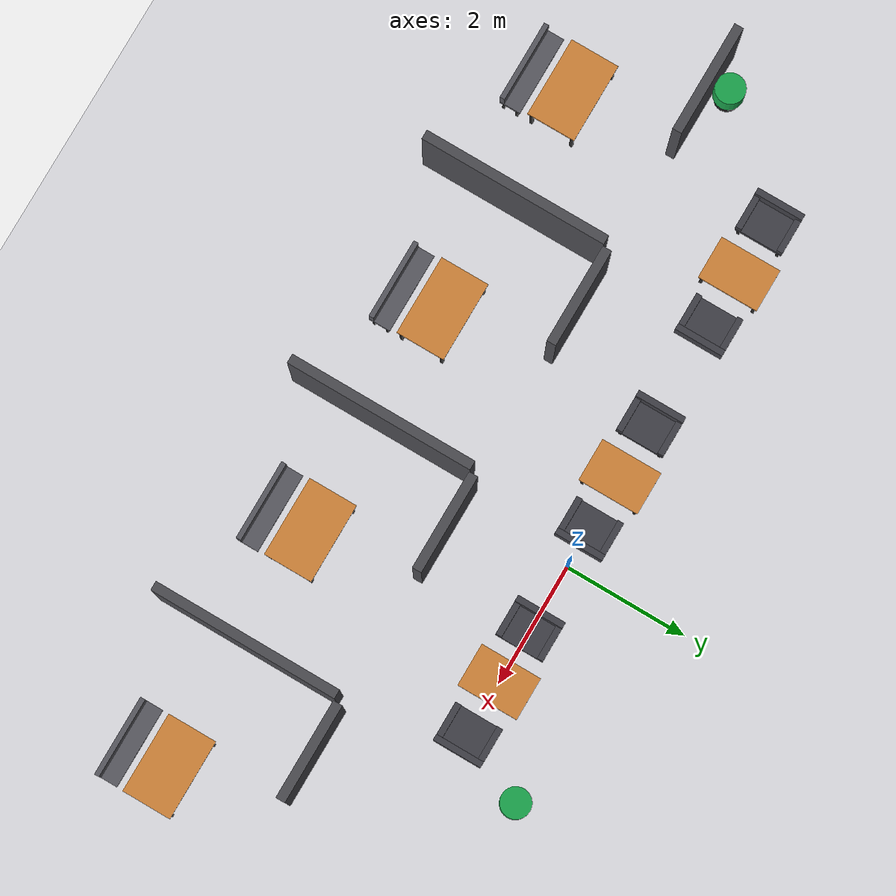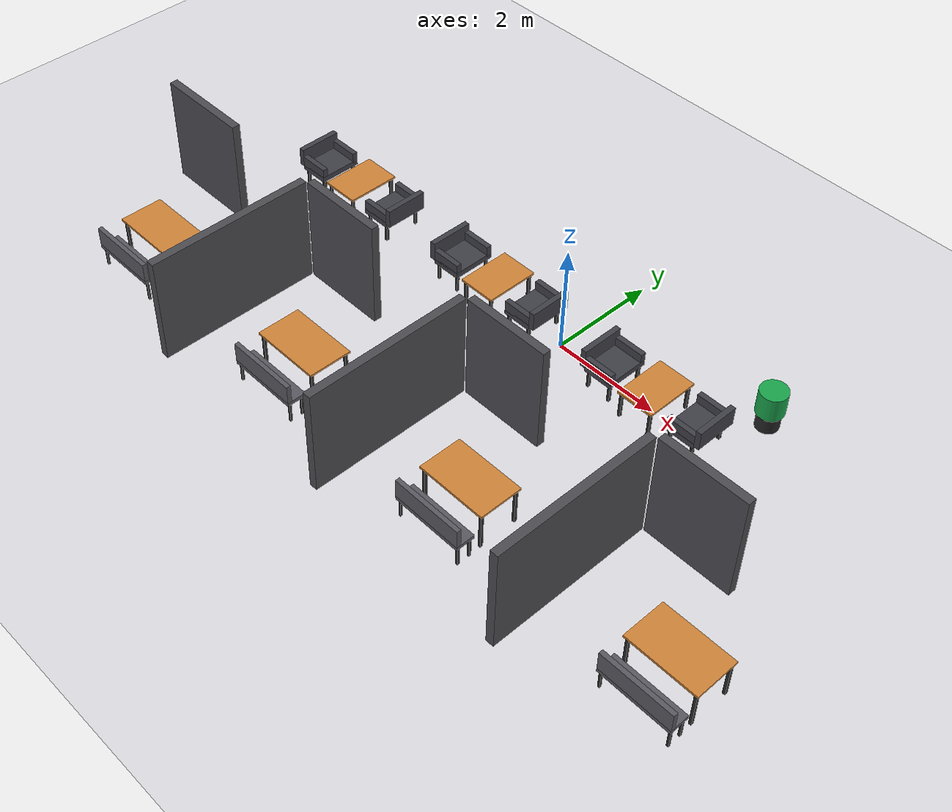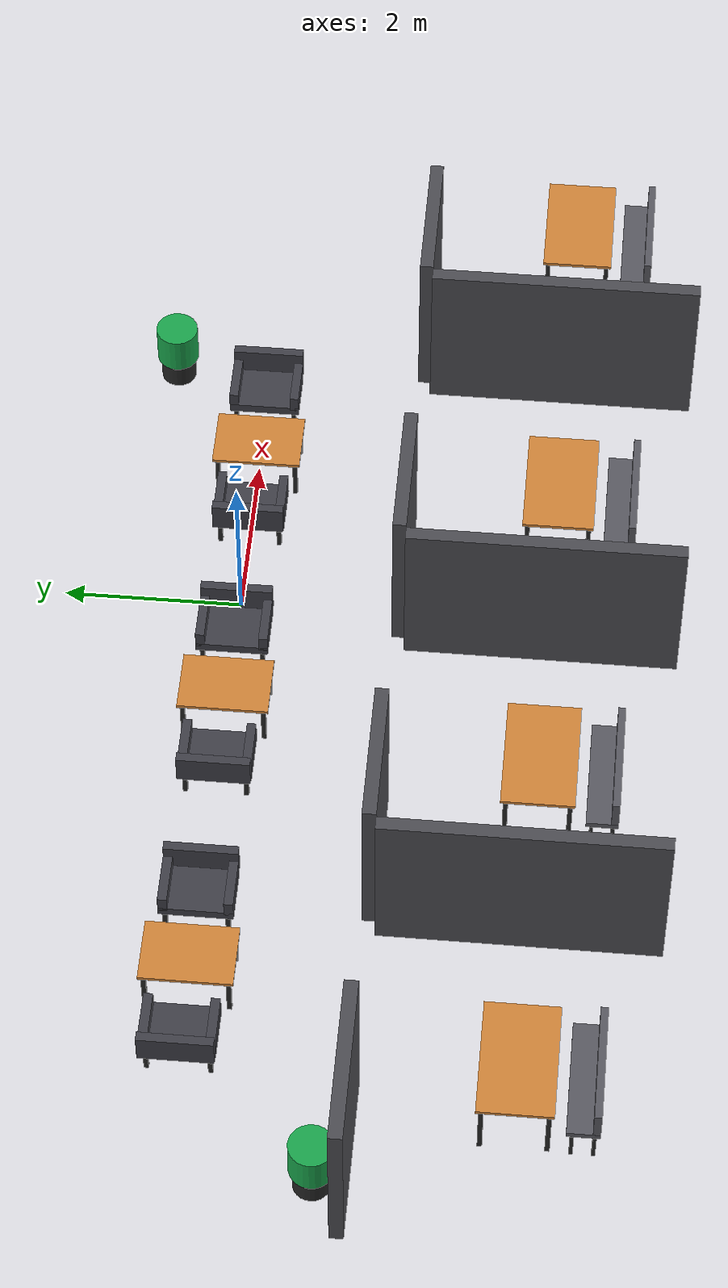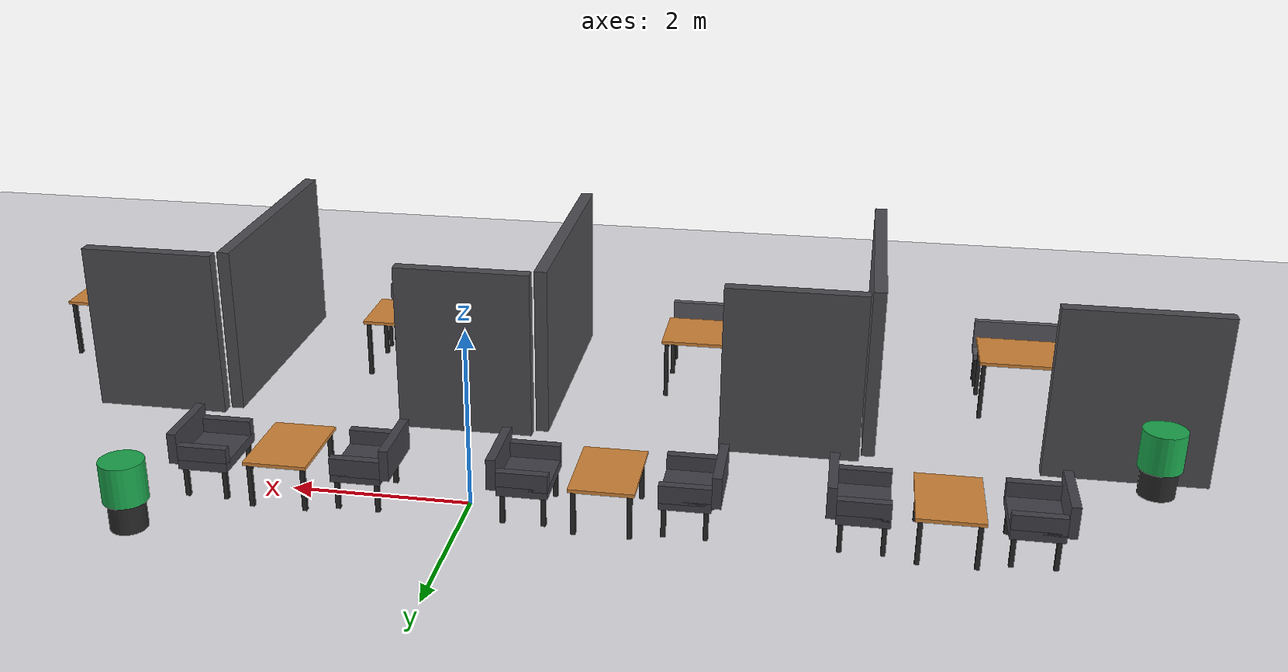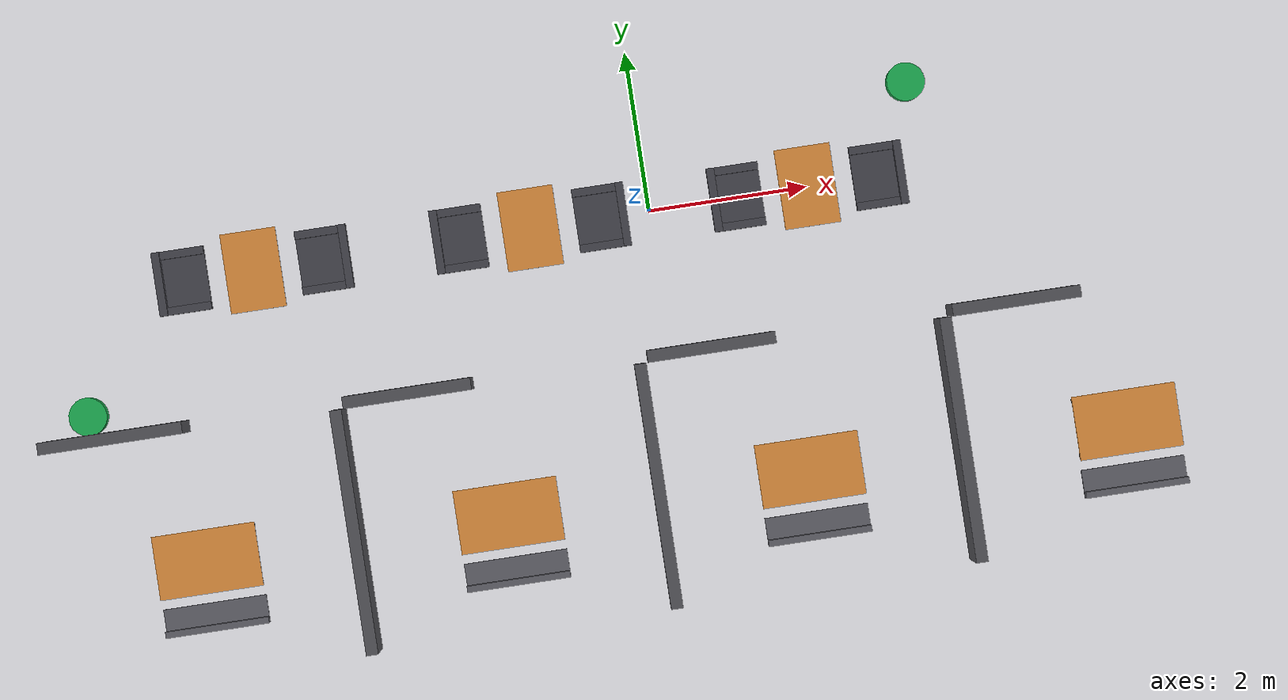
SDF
<sdf version="1.8">
 <world name="restaurant_world">
  <model name="ground_plane">
   <static>true</static>
   <link name="link">
    <collision name="collision">
     <geometry><plane><normal>0 0 1</normal><size>100 100</size></plane></geometry>
    </collision>
    <visual name="visual">
     <geometry><plane><normal>0 0 1</normal><size>100 100</size></plane></geometry>
     <material>
      <ambient>0.88 0.88 0.90 1</ambient>
      <diffuse>0.88 0.88 0.90 1</diffuse>
      <specular>0.1 0.1 0.1 1</specular>
     </material>
    </visual>
   </link>
  </model>
  <model name="restaurant_structure">
   <static>true</static>
   <link name="central_lounge_furniture">
    <visual name="c_tbl_1_top">
     <pose>-5.0 0.0 0.520 0 0 0</pose>
     <geometry><box><size>0.7 1.0 0.04</size></box></geometry>
     <material><ambient>0.82 0.52 0.22 1</ambient><diffuse>0.82 0.52 0.22 1</diffuse></material>
    </visual>
    <collision name="c_tbl_1_top_c">
     <pose>-5.0 0.0 0.520 0 0 0</pose>
     <geometry><box><size>0.7 1.0 0.04</size></box></geometry>
    </collision>
    <visual name="c_tbl_1_leg_nw">
     <pose>-5.295 0.445 0.250 0 0 0</pose>
     <geometry><box><size>0.05 0.05 0.500</size></box></geometry>
     <material><ambient>0.15 0.15 0.15 1</ambient><diffuse>0.15 0.15 0.15 1</diffuse></material>
    </visual>
    <collision name="c_tbl_1_leg_nw_c">
     <pose>-5.295 0.445 0.250 0 0 0</pose>
     <geometry><box><size>0.05 0.05 0.500</size></box></geometry>
    </collision>
    <visual name="c_tbl_1_leg_ne">
     <pose>-4.705 0.445 0.250 0 0 0</pose>
     <geometry><box><size>0.05 0.05 0.500</size></box></geometry>
     <material><ambient>0.15 0.15 0.15 1</ambient><diffuse>0.15 0.15 0.15 1</diffuse></material>
    </visual>
    <collision name="c_tbl_1_leg_ne_c">
     <pose>-4.705 0.445 0.250 0 0 0</pose>
     <geometry><box><size>0.05 0.05 0.500</size></box></geometry>
    </collision>
    <visual name="c_tbl_1_leg_sw">
     <pose>-5.295 -0.445 0.250 0 0 0</pose>
     <geometry><box><size>0.05 0.05 0.500</size></box></geometry>
     <material><ambient>0.15 0.15 0.15 1</ambient><diffuse>0.15 0.15 0.15 1</diffuse></material>
    </visual>
    <collision name="c_tbl_1_leg_sw_c">
     <pose>-5.295 -0.445 0.250 0 0 0</pose>
     <geometry><box><size>0.05 0.05 0.500</size></box></geometry>
    </collision>
    <visual name="c_tbl_1_leg_se">
     <pose>-4.705 -0.445 0.250 0 0 0</pose>
     <geometry><box><size>0.05 0.05 0.500</size></box></geometry>
     <material><ambient>0.15 0.15 0.15 1</ambient><diffuse>0.15 0.15 0.15 1</diffuse></material>
    </visual>
    <collision name="c_tbl_1_leg_se_c">
     <pose>-4.705 -0.445 0.250 0 0 0</pose>
     <geometry><box><size>0.05 0.05 0.500</size></box></geometry>
    </collision>
    <visual name="c_sofa_1_l_seat">
     <pose>-5.85 0.0 0.395 0 0 0</pose>
     <geometry><box><size>0.55 0.8 0.110</size></box></geometry>
     <material><ambient>0.25 0.25 0.28 1</ambient><diffuse>0.25 0.25 0.28 1</diffuse></material>
    </visual>
    <collision name="c_sofa_1_l_seat_c">
     <pose>-5.85 0.0 0.395 0 0 0</pose>
     <geometry><box><size>0.55 0.8 0.110</size></box></geometry>
    </collision>
    <visual name="c_sofa_1_l_back">
     <pose>-6.175 0.0 0.575 0 0 0</pose>
     <geometry><box><size>0.1 0.8 0.35</size></box></geometry>
     <material><ambient>0.25 0.25 0.28 1</ambient><diffuse>0.25 0.25 0.28 1</diffuse></material>
    </visual>
    <collision name="c_sofa_1_l_back_c">
     <pose>-6.175 0.0 0.575 0 0 0</pose>
     <geometry><box><size>0.1 0.8 0.35</size></box></geometry>
    </collision>
    <visual name="c_sofa_1_l_arm_0">
     <pose>-5.850 0.350 0.515 0 0 0</pose>
     <geometry><box><size>0.55 0.10 0.20</size></box></geometry>
     <material><ambient>0.25 0.25 0.28 1</ambient><diffuse>0.25 0.25 0.28 1</diffuse></material>
    </visual>
    <collision name="c_sofa_1_l_arm_0_c">
     <pose>-5.850 0.350 0.515 0 0 0</pose>
     <geometry><box><size>0.55 0.10 0.20</size></box></geometry>
    </collision>
    <visual name="c_sofa_1_l_arm_1">
     <pose>-5.850 -0.350 0.515 0 0 0</pose>
     <geometry><box><size>0.55 0.10 0.20</size></box></geometry>
     <material><ambient>0.25 0.25 0.28 1</ambient><diffuse>0.25 0.25 0.28 1</diffuse></material>
    </visual>
    <collision name="c_sofa_1_l_arm_1_c">
     <pose>-5.850 -0.350 0.515 0 0 0</pose>
     <geometry><box><size>0.55 0.10 0.20</size></box></geometry>
    </collision>
    <visual name="c_sofa_1_l_leg_nw">
     <pose>-6.070 0.335 0.170 0 0 0</pose>
     <geometry><box><size>0.05 0.05 0.340</size></box></geometry>
     <material><ambient>0.15 0.15 0.15 1</ambient><diffuse>0.15 0.15 0.15 1</diffuse></material>
    </visual>
    <collision name="c_sofa_1_l_leg_nw_c">
     <pose>-6.070 0.335 0.170 0 0 0</pose>
     <geometry><box><size>0.05 0.05 0.340</size></box></geometry>
    </collision>
    <visual name="c_sofa_1_l_leg_ne">
     <pose>-5.630 0.335 0.170 0 0 0</pose>
     <geometry><box><size>0.05 0.05 0.340</size></box></geometry>
     <material><ambient>0.15 0.15 0.15 1</ambient><diffuse>0.15 0.15 0.15 1</diffuse></material>
    </visual>
    <collision name="c_sofa_1_l_leg_ne_c">
     <pose>-5.630 0.335 0.170 0 0 0</pose>
     <geometry><box><size>0.05 0.05 0.340</size></box></geometry>
    </collision>
    <visual name="c_sofa_1_l_leg_sw">
     <pose>-6.070 -0.335 0.170 0 0 0</pose>
     <geometry><box><size>0.05 0.05 0.340</size></box></geometry>
     <material><ambient>0.15 0.15 0.15 1</ambient><diffuse>0.15 0.15 0.15 1</diffuse></material>
    </visual>
    <collision name="c_sofa_1_l_leg_sw_c">
     <pose>-6.070 -0.335 0.170 0 0 0</pose>
     <geometry><box><size>0.05 0.05 0.340</size></box></geometry>
    </collision>
    <visual name="c_sofa_1_l_leg_se">
     <pose>-5.630 -0.335 0.170 0 0 0</pose>
     <geometry><box><size>0.05 0.05 0.340</size></box></geometry>
     <material><ambient>0.15 0.15 0.15 1</ambient><diffuse>0.15 0.15 0.15 1</diffuse></material>
    </visual>
    <collision name="c_sofa_1_l_leg_se_c">
     <pose>-5.630 -0.335 0.170 0 0 0</pose>
     <geometry><box><size>0.05 0.05 0.340</size></box></geometry>
    </collision>
    <visual name="c_sofa_1_r_seat">
     <pose>-4.15 0.0 0.395 0 0 0</pose>
     <geometry><box><size>0.55 0.8 0.110</size></box></geometry>
     <material><ambient>0.25 0.25 0.28 1</ambient><diffuse>0.25 0.25 0.28 1</diffuse></material>
    </visual>
    <collision name="c_sofa_1_r_seat_c">
     <pose>-4.15 0.0 0.395 0 0 0</pose>
     <geometry><box><size>0.55 0.8 0.110</size></box></geometry>
    </collision>
    <visual name="c_sofa_1_r_back">
     <pose>-3.825 0.0 0.575 0 0 0</pose>
     <geometry><box><size>0.1 0.8 0.35</size></box></geometry>
     <material><ambient>0.25 0.25 0.28 1</ambient><diffuse>0.25 0.25 0.28 1</diffuse></material>
    </visual>
    <collision name="c_sofa_1_r_back_c">
     <pose>-3.825 0.0 0.575 0 0 0</pose>
     <geometry><box><size>0.1 0.8 0.35</size></box></geometry>
    </collision>
    <visual name="c_sofa_1_r_arm_0">
     <pose>-4.150 0.350 0.515 0 0 0</pose>
     <geometry><box><size>0.55 0.10 0.20</size></box></geometry>
     <material><ambient>0.25 0.25 0.28 1</ambient><diffuse>0.25 0.25 0.28 1</diffuse></material>
    </visual>
    <collision name="c_sofa_1_r_arm_0_c">
     <pose>-4.150 0.350 0.515 0 0 0</pose>
     <geometry><box><size>0.55 0.10 0.20</size></box></geometry>
    </collision>
    <visual name="c_sofa_1_r_arm_1">
     <pose>-4.150 -0.350 0.515 0 0 0</pose>
     <geometry><box><size>0.55 0.10 0.20</size></box></geometry>
     <material><ambient>0.25 0.25 0.28 1</ambient><diffuse>0.25 0.25 0.28 1</diffuse></material>
    </visual>
    <collision name="c_sofa_1_r_arm_1_c">
     <pose>-4.150 -0.350 0.515 0 0 0</pose>
     <geometry><box><size>0.55 0.10 0.20</size></box></geometry>
    </collision>
    <visual name="c_sofa_1_r_leg_nw">
     <pose>-4.370 0.335 0.170 0 0 0</pose>
     <geometry><box><size>0.05 0.05 0.340</size></box></geometry>
     <material><ambient>0.15 0.15 0.15 1</ambient><diffuse>0.15 0.15 0.15 1</diffuse></material>
    </visual>
    <collision name="c_sofa_1_r_leg_nw_c">
     <pose>-4.370 0.335 0.170 0 0 0</pose>
     <geometry><box><size>0.05 0.05 0.340</size></box></geometry>
    </collision>
    <visual name="c_sofa_1_r_leg_ne">
     <pose>-3.930 0.335 0.170 0 0 0</pose>
     <geometry><box><size>0.05 0.05 0.340</size></box></geometry>
     <material><ambient>0.15 0.15 0.15 1</ambient><diffuse>0.15 0.15 0.15 1</diffuse></material>
    </visual>
    <collision name="c_sofa_1_r_leg_ne_c">
     <pose>-3.930 0.335 0.170 0 0 0</pose>
     <geometry><box><size>0.05 0.05 0.340</size></box></geometry>
    </collision>
    <visual name="c_sofa_1_r_leg_sw">
     <pose>-4.370 -0.335 0.170 0 0 0</pose>
     <geometry><box><size>0.05 0.05 0.340</size></box></geometry>
     <material><ambient>0.15 0.15 0.15 1</ambient><diffuse>0.15 0.15 0.15 1</diffuse></material>
    </visual>
    <collision name="c_sofa_1_r_leg_sw_c">
     <pose>-4.370 -0.335 0.170 0 0 0</pose>
     <geometry><box><size>0.05 0.05 0.340</size></box></geometry>
    </collision>
    <visual name="c_sofa_1_r_leg_se">
     <pose>-3.930 -0.335 0.170 0 0 0</pose>
     <geometry><box><size>0.05 0.05 0.340</size></box></geometry>
     <material><ambient>0.15 0.15 0.15 1</ambient><diffuse>0.15 0.15 0.15 1</diffuse></material>
    </visual>
    <collision name="c_sofa_1_r_leg_se_c">
     <pose>-3.930 -0.335 0.170 0 0 0</pose>
     <geometry><box><size>0.05 0.05 0.340</size></box></geometry>
    </collision>
    <visual name="c_tbl_2_top">
     <pose>-1.5 0.0 0.520 0 0 0</pose>
     <geometry><box><size>0.7 1.0 0.04</size></box></geometry>
     <material><ambient>0.82 0.52 0.22 1</ambient><diffuse>0.82 0.52 0.22 1</diffuse></material>
    </visual>
    <collision name="c_tbl_2_top_c">
     <pose>-1.5 0.0 0.520 0 0 0</pose>
     <geometry><box><size>0.7 1.0 0.04</size></box></geometry>
    </collision>
    <visual name="c_tbl_2_leg_nw">
     <pose>-1.795 0.445 0.250 0 0 0</pose>
     <geometry><box><size>0.05 0.05 0.500</size></box></geometry>
     <material><ambient>0.15 0.15 0.15 1</ambient><diffuse>0.15 0.15 0.15 1</diffuse></material>
    </visual>
    <collision name="c_tbl_2_leg_nw_c">
     <pose>-1.795 0.445 0.250 0 0 0</pose>
     <geometry><box><size>0.05 0.05 0.500</size></box></geometry>
    </collision>
    <visual name="c_tbl_2_leg_ne">
     <pose>-1.205 0.445 0.250 0 0 0</pose>
     <geometry><box><size>0.05 0.05 0.500</size></box></geometry>
     <material><ambient>0.15 0.15 0.15 1</ambient><diffuse>0.15 0.15 0.15 1</diffuse></material>
    </visual>
    <collision name="c_tbl_2_leg_ne_c">
     <pose>-1.205 0.445 0.250 0 0 0</pose>
     <geometry><box><size>0.05 0.05 0.500</size></box></geometry>
    </collision>
    <visual name="c_tbl_2_leg_sw">
     <pose>-1.795 -0.445 0.250 0 0 0</pose>
     <geometry><box><size>0.05 0.05 0.500</size></box></geometry>
     <material><ambient>0.15 0.15 0.15 1</ambient><diffuse>0.15 0.15 0.15 1</diffuse></material>
    </visual>
    <collision name="c_tbl_2_leg_sw_c">
     <pose>-1.795 -0.445 0.250 0 0 0</pose>
     <geometry><box><size>0.05 0.05 0.500</size></box></geometry>
    </collision>
    <visual name="c_tbl_2_leg_se">
     <pose>-1.205 -0.445 0.250 0 0 0</pose>
     <geometry><box><size>0.05 0.05 0.500</size></box></geometry>
     <material><ambient>0.15 0.15 0.15 1</ambient><diffuse>0.15 0.15 0.15 1</diffuse></material>
    </visual>
    <collision name="c_tbl_2_leg_se_c">
     <pose>-1.205 -0.445 0.250 0 0 0</pose>
     <geometry><box><size>0.05 0.05 0.500</size></box></geometry>
    </collision>
    <visual name="c_sofa_2_l_seat">
     <pose>-2.35 0.0 0.395 0 0 0</pose>
     <geometry><box><size>0.55 0.8 0.110</size></box></geometry>
     <material><ambient>0.25 0.25 0.28 1</ambient><diffuse>0.25 0.25 0.28 1</diffuse></material>
    </visual>
    <collision name="c_sofa_2_l_seat_c">
     <pose>-2.35 0.0 0.395 0 0 0</pose>
     <geometry><box><size>0.55 0.8 0.110</size></box></geometry>
    </collision>
    <visual name="c_sofa_2_l_back">
     <pose>-2.675 0.0 0.575 0 0 0</pose>
     <geometry><box><size>0.1 0.8 0.35</size></box></geometry>
     <material><ambient>0.25 0.25 0.28 1</ambient><diffuse>0.25 0.25 0.28 1</diffuse></material>
    </visual>
    <collision name="c_sofa_2_l_back_c">
     <pose>-2.675 0.0 0.575 0 0 0</pose>
     <geometry><box><size>0.1 0.8 0.35</size></box></geometry>
    </collision>
    <visual name="c_sofa_2_l_arm_0">
     <pose>-2.350 0.350 0.515 0 0 0</pose>
     <geometry><box><size>0.55 0.10 0.20</size></box></geometry>
     <material><ambient>0.25 0.25 0.28 1</ambient><diffuse>0.25 0.25 0.28 1</diffuse></material>
    </visual>
    <collision name="c_sofa_2_l_arm_0_c">
     <pose>-2.350 0.350 0.515 0 0 0</pose>
     <geometry><box><size>0.55 0.10 0.20</size></box></geometry>
    </collision>
    <visual name="c_sofa_2_l_arm_1">
     <pose>-2.350 -0.350 0.515 0 0 0</pose>
     <geometry><box><size>0.55 0.10 0.20</size></box></geometry>
     <material><ambient>0.25 0.25 0.28 1</ambient><diffuse>0.25 0.25 0.28 1</diffuse></material>
    </visual>
    <collision name="c_sofa_2_l_arm_1_c">
     <pose>-2.350 -0.350 0.515 0 0 0</pose>
     <geometry><box><size>0.55 0.10 0.20</size></box></geometry>
    </collision>
    <visual name="c_sofa_2_l_leg_nw">
     <pose>-2.570 0.335 0.170 0 0 0</pose>
     <geometry><box><size>0.05 0.05 0.340</size></box></geometry>
     <material><ambient>0.15 0.15 0.15 1</ambient><diffuse>0.15 0.15 0.15 1</diffuse></material>
    </visual>
    <collision name="c_sofa_2_l_leg_nw_c">
     <pose>-2.570 0.335 0.170 0 0 0</pose>
     <geometry><box><size>0.05 0.05 0.340</size></box></geometry>
    </collision>
    <visual name="c_sofa_2_l_leg_ne">
     <pose>-2.130 0.335 0.170 0 0 0</pose>
     <geometry><box><size>0.05 0.05 0.340</size></box></geometry>
     <material><ambient>0.15 0.15 0.15 1</ambient><diffuse>0.15 0.15 0.15 1</diffuse></material>
    </visual>
    <collision name="c_sofa_2_l_leg_ne_c">
     <pose>-2.130 0.335 0.170 0 0 0</pose>
     <geometry><box><size>0.05 0.05 0.340</size></box></geometry>
    </collision>
    <visual name="c_sofa_2_l_leg_sw">
     <pose>-2.570 -0.335 0.170 0 0 0</pose>
     <geometry><box><size>0.05 0.05 0.340</size></box></geometry>
     <material><ambient>0.15 0.15 0.15 1</ambient><diffuse>0.15 0.15 0.15 1</diffuse></material>
    </visual>
    <collision name="c_sofa_2_l_leg_sw_c">
     <pose>-2.570 -0.335 0.170 0 0 0</pose>
     <geometry><box><size>0.05 0.05 0.340</size></box></geometry>
    </collision>
    <visual name="c_sofa_2_l_leg_se">
     <pose>-2.130 -0.335 0.170 0 0 0</pose>
     <geometry><box><size>0.05 0.05 0.340</size></box></geometry>
     <material><ambient>0.15 0.15 0.15 1</ambient><diffuse>0.15 0.15 0.15 1</diffuse></material>
    </visual>
    <collision name="c_sofa_2_l_leg_se_c">
     <pose>-2.130 -0.335 0.170 0 0 0</pose>
     <geometry><box><size>0.05 0.05 0.340</size></box></geometry>
    </collision>
    <visual name="c_sofa_2_r_seat">
     <pose>-0.65 0.0 0.395 0 0 0</pose>
     <geometry><box><size>0.55 0.8 0.110</size></box></geometry>
     <material><ambient>0.25 0.25 0.28 1</ambient><diffuse>0.25 0.25 0.28 1</diffuse></material>
    </visual>
    <collision name="c_sofa_2_r_seat_c">
     <pose>-0.65 0.0 0.395 0 0 0</pose>
     <geometry><box><size>0.55 0.8 0.110</size></box></geometry>
    </collision>
    <visual name="c_sofa_2_r_back">
     <pose>-0.325 0.0 0.575 0 0 0</pose>
     <geometry><box><size>0.1 0.8 0.35</size></box></geometry>
     <material><ambient>0.25 0.25 0.28 1</ambient><diffuse>0.25 0.25 0.28 1</diffuse></material>
    </visual>
    <collision name="c_sofa_2_r_back_c">
     <pose>-0.325 0.0 0.575 0 0 0</pose>
     <geometry><box><size>0.1 0.8 0.35</size></box></geometry>
    </collision>
    <visual name="c_sofa_2_r_arm_0">
     <pose>-0.650 0.350 0.515 0 0 0</pose>
     <geometry><box><size>0.55 0.10 0.20</size></box></geometry>
     <material><ambient>0.25 0.25 0.28 1</ambient><diffuse>0.25 0.25 0.28 1</diffuse></material>
    </visual>
    <collision name="c_sofa_2_r_arm_0_c">
     <pose>-0.650 0.350 0.515 0 0 0</pose>
     <geometry><box><size>0.55 0.10 0.20</size></box></geometry>
    </collision>
    <visual name="c_sofa_2_r_arm_1">
     <pose>-0.650 -0.350 0.515 0 0 0</pose>
     <geometry><box><size>0.55 0.10 0.20</size></box></geometry>
     <material><ambient>0.25 0.25 0.28 1</ambient><diffuse>0.25 0.25 0.28 1</diffuse></material>
    </visual>
    <collision name="c_sofa_2_r_arm_1_c">
     <pose>-0.650 -0.350 0.515 0 0 0</pose>
     <geometry><box><size>0.55 0.10 0.20</size></box></geometry>
    </collision>
    <visual name="c_sofa_2_r_leg_nw">
     <pose>-0.870 0.335 0.170 0 0 0</pose>
     <geometry><box><size>0.05 0.05 0.340</size></box></geometry>
     <material><ambient>0.15 0.15 0.15 1</ambient><diffuse>0.15 0.15 0.15 1</diffuse></material>
    </visual>
    <collision name="c_sofa_2_r_leg_nw_c">
     <pose>-0.870 0.335 0.170 0 0 0</pose>
     <geometry><box><size>0.05 0.05 0.340</size></box></geometry>
    </collision>
    <visual name="c_sofa_2_r_leg_ne">
     <pose>-0.430 0.335 0.170 0 0 0</pose>
     <geometry><box><size>0.05 0.05 0.340</size></box></geometry>
     <material><ambient>0.15 0.15 0.15 1</ambient><diffuse>0.15 0.15 0.15 1</diffuse></material>
    </visual>
    <collision name="c_sofa_2_r_leg_ne_c">
     <pose>-0.430 0.335 0.170 0 0 0</pose>
     <geometry><box><size>0.05 0.05 0.340</size></box></geometry>
    </collision>
    <visual name="c_sofa_2_r_leg_sw">
     <pose>-0.870 -0.335 0.170 0 0 0</pose>
     <geometry><box><size>0.05 0.05 0.340</size></box></geometry>
     <material><ambient>0.15 0.15 0.15 1</ambient><diffuse>0.15 0.15 0.15 1</diffuse></material>
    </visual>
    <collision name="c_sofa_2_r_leg_sw_c">
     <pose>-0.870 -0.335 0.170 0 0 0</pose>
     <geometry><box><size>0.05 0.05 0.340</size></box></geometry>
    </collision>
    <visual name="c_sofa_2_r_leg_se">
     <pose>-0.430 -0.335 0.170 0 0 0</pose>
     <geometry><box><size>0.05 0.05 0.340</size></box></geometry>
     <material><ambient>0.15 0.15 0.15 1</ambient><diffuse>0.15 0.15 0.15 1</diffuse></material>
    </visual>
    <collision name="c_sofa_2_r_leg_se_c">
     <pose>-0.430 -0.335 0.170 0 0 0</pose>
     <geometry><box><size>0.05 0.05 0.340</size></box></geometry>
    </collision>
    <visual name="c_tbl_3_top">
     <pose>2.0 0.0 0.520 0 0 0</pose>
     <geometry><box><size>0.7 1.0 0.04</size></box></geometry>
     <material><ambient>0.82 0.52 0.22 1</ambient><diffuse>0.82 0.52 0.22 1</diffuse></material>
    </visual>
    <collision name="c_tbl_3_top_c">
     <pose>2.0 0.0 0.520 0 0 0</pose>
     <geometry><box><size>0.7 1.0 0.04</size></box></geometry>
    </collision>
    <visual name="c_tbl_3_leg_nw">
     <pose>1.705 0.445 0.250 0 0 0</pose>
     <geometry><box><size>0.05 0.05 0.500</size></box></geometry>
     <material><ambient>0.15 0.15 0.15 1</ambient><diffuse>0.15 0.15 0.15 1</diffuse></material>
    </visual>
    <collision name="c_tbl_3_leg_nw_c">
     <pose>1.705 0.445 0.250 0 0 0</pose>
     <geometry><box><size>0.05 0.05 0.500</size></box></geometry>
    </collision>
    <visual name="c_tbl_3_leg_ne">
     <pose>2.295 0.445 0.250 0 0 0</pose>
     <geometry><box><size>0.05 0.05 0.500</size></box></geometry>
     <material><ambient>0.15 0.15 0.15 1</ambient><diffuse>0.15 0.15 0.15 1</diffuse></material>
    </visual>
    <collision name="c_tbl_3_leg_ne_c">
     <pose>2.295 0.445 0.250 0 0 0</pose>
     <geometry><box><size>0.05 0.05 0.500</size></box></geometry>
    </collision>
    <visual name="c_tbl_3_leg_sw">
     <pose>1.705 -0.445 0.250 0 0 0</pose>
     <geometry><box><size>0.05 0.05 0.500</size></box></geometry>
     <material><ambient>0.15 0.15 0.15 1</ambient><diffuse>0.15 0.15 0.15 1</diffuse></material>
    </visual>
    <collision name="c_tbl_3_leg_sw_c">
     <pose>1.705 -0.445 0.250 0 0 0</pose>
     <geometry><box><size>0.05 0.05 0.500</size></box></geometry>
    </collision>
    <visual name="c_tbl_3_leg_se">
     <pose>2.295 -0.445 0.250 0 0 0</pose>
     <geometry><box><size>0.05 0.05 0.500</size></box></geometry>
     <material><ambient>0.15 0.15 0.15 1</ambient><diffuse>0.15 0.15 0.15 1</diffuse></material>
    </visual>
    <collision name="c_tbl_3_leg_se_c">
     <pose>2.295 -0.445 0.250 0 0 0</pose>
     <geometry><box><size>0.05 0.05 0.500</size></box></geometry>
    </collision>
    <visual name="c_sofa_3_l_seat">
     <pose>1.15 0.0 0.395 0 0 0</pose>
     <geometry><box><size>0.55 0.8 0.110</size></box></geometry>
     <material><ambient>0.25 0.25 0.28 1</ambient><diffuse>0.25 0.25 0.28 1</diffuse></material>
    </visual>
    <collision name="c_sofa_3_l_seat_c">
     <pose>1.15 0.0 0.395 0 0 0</pose>
     <geometry><box><size>0.55 0.8 0.110</size></box></geometry>
    </collision>
    <visual name="c_sofa_3_l_back">
     <pose>0.825 0.0 0.575 0 0 0</pose>
     <geometry><box><size>0.1 0.8 0.35</size></box></geometry>
     <material><ambient>0.25 0.25 0.28 1</ambient><diffuse>0.25 0.25 0.28 1</diffuse></material>
    </visual>
    <collision name="c_sofa_3_l_back_c">
     <pose>0.825 0.0 0.575 0 0 0</pose>
     <geometry><box><size>0.1 0.8 0.35</size></box></geometry>
    </collision>
    <visual name="c_sofa_3_l_arm_0">
     <pose>1.150 0.350 0.515 0 0 0</pose>
     <geometry><box><size>0.55 0.10 0.20</size></box></geometry>
     <material><ambient>0.25 0.25 0.28 1</ambient><diffuse>0.25 0.25 0.28 1</diffuse></material>
    </visual>
    <collision name="c_sofa_3_l_arm_0_c">
     <pose>1.150 0.350 0.515 0 0 0</pose>
     <geometry><box><size>0.55 0.10 0.20</size></box></geometry>
    </collision>
    <visual name="c_sofa_3_l_arm_1">
     <pose>1.150 -0.350 0.515 0 0 0</pose>
     <geometry><box><size>0.55 0.10 0.20</size></box></geometry>
     <material><ambient>0.25 0.25 0.28 1</ambient><diffuse>0.25 0.25 0.28 1</diffuse></material>
    </visual>
    <collision name="c_sofa_3_l_arm_1_c">
     <pose>1.150 -0.350 0.515 0 0 0</pose>
     <geometry><box><size>0.55 0.10 0.20</size></box></geometry>
    </collision>
    <visual name="c_sofa_3_l_leg_nw">
     <pose>0.930 0.335 0.170 0 0 0</pose>
     <geometry><box><size>0.05 0.05 0.340</size></box></geometry>
     <material><ambient>0.15 0.15 0.15 1</ambient><diffuse>0.15 0.15 0.15 1</diffuse></material>
    </visual>
    <collision name="c_sofa_3_l_leg_nw_c">
     <pose>0.930 0.335 0.170 0 0 0</pose>
     <geometry><box><size>0.05 0.05 0.340</size></box></geometry>
    </collision>
    <visual name="c_sofa_3_l_leg_ne">
     <pose>1.370 0.335 0.170 0 0 0</pose>
     <geometry><box><size>0.05 0.05 0.340</size></box></geometry>
     <material><ambient>0.15 0.15 0.15 1</ambient><diffuse>0.15 0.15 0.15 1</diffuse></material>
    </visual>
    <collision name="c_sofa_3_l_leg_ne_c">
     <pose>1.370 0.335 0.170 0 0 0</pose>
     <geometry><box><size>0.05 0.05 0.340</size></box></geometry>
    </collision>
    <visual name="c_sofa_3_l_leg_sw">
     <pose>0.930 -0.335 0.170 0 0 0</pose>
     <geometry><box><size>0.05 0.05 0.340</size></box></geometry>
     <material><ambient>0.15 0.15 0.15 1</ambient><diffuse>0.15 0.15 0.15 1</diffuse></material>
    </visual>
    <collision name="c_sofa_3_l_leg_sw_c">
     <pose>0.930 -0.335 0.170 0 0 0</pose>
     <geometry><box><size>0.05 0.05 0.340</size></box></geometry>
    </collision>
    <visual name="c_sofa_3_l_leg_se">
     <pose>1.370 -0.335 0.170 0 0 0</pose>
     <geometry><box><size>0.05 0.05 0.340</size></box></geometry>
     <material><ambient>0.15 0.15 0.15 1</ambient><diffuse>0.15 0.15 0.15 1</diffuse></material>
    </visual>
    <collision name="c_sofa_3_l_leg_se_c">
     <pose>1.370 -0.335 0.170 0 0 0</pose>
     <geometry><box><size>0.05 0.05 0.340</size></box></geometry>
    </collision>
    <visual name="c_sofa_3_r_seat">
     <pose>2.85 0.0 0.395 0 0 0</pose>
     <geometry><box><size>0.55 0.8 0.110</size></box></geometry>
     <material><ambient>0.25 0.25 0.28 1</ambient><diffuse>0.25 0.25 0.28 1</diffuse></material>
    </visual>
    <collision name="c_sofa_3_r_seat_c">
     <pose>2.85 0.0 0.395 0 0 0</pose>
     <geometry><box><size>0.55 0.8 0.110</size></box></geometry>
    </collision>
    <visual name="c_sofa_3_r_back">
     <pose>3.175 0.0 0.575 0 0 0</pose>
     <geometry><box><size>0.1 0.8 0.35</size></box></geometry>
     <material><ambient>0.25 0.25 0.28 1</ambient><diffuse>0.25 0.25 0.28 1</diffuse></material>
    </visual>
    <collision name="c_sofa_3_r_back_c">
     <pose>3.175 0.0 0.575 0 0 0</pose>
     <geometry><box><size>0.1 0.8 0.35</size></box></geometry>
    </collision>
    <visual name="c_sofa_3_r_arm_0">
     <pose>2.850 0.350 0.515 0 0 0</pose>
     <geometry><box><size>0.55 0.10 0.20</size></box></geometry>
     <material><ambient>0.25 0.25 0.28 1</ambient><diffuse>0.25 0.25 0.28 1</diffuse></material>
    </visual>
    <collision name="c_sofa_3_r_arm_0_c">
     <pose>2.850 0.350 0.515 0 0 0</pose>
     <geometry><box><size>0.55 0.10 0.20</size></box></geometry>
    </collision>
    <visual name="c_sofa_3_r_arm_1">
     <pose>2.850 -0.350 0.515 0 0 0</pose>
     <geometry><box><size>0.55 0.10 0.20</size></box></geometry>
     <material><ambient>0.25 0.25 0.28 1</ambient><diffuse>0.25 0.25 0.28 1</diffuse></material>
    </visual>
    <collision name="c_sofa_3_r_arm_1_c">
     <pose>2.850 -0.350 0.515 0 0 0</pose>
     <geometry><box><size>0.55 0.10 0.20</size></box></geometry>
    </collision>
    <visual name="c_sofa_3_r_leg_nw">
     <pose>2.630 0.335 0.170 0 0 0</pose>
     <geometry><box><size>0.05 0.05 0.340</size></box></geometry>
     <material><ambient>0.15 0.15 0.15 1</ambient><diffuse>0.15 0.15 0.15 1</diffuse></material>
    </visual>
    <collision name="c_sofa_3_r_leg_nw_c">
     <pose>2.630 0.335 0.170 0 0 0</pose>
     <geometry><box><size>0.05 0.05 0.340</size></box></geometry>
    </collision>
    <visual name="c_sofa_3_r_leg_ne">
     <pose>3.070 0.335 0.170 0 0 0</pose>
     <geometry><box><size>0.05 0.05 0.340</size></box></geometry>
     <material><ambient>0.15 0.15 0.15 1</ambient><diffuse>0.15 0.15 0.15 1</diffuse></material>
    </visual>
    <collision name="c_sofa_3_r_leg_ne_c">
     <pose>3.070 0.335 0.170 0 0 0</pose>
     <geometry><box><size>0.05 0.05 0.340</size></box></geometry>
    </collision>
    <visual name="c_sofa_3_r_leg_sw">
     <pose>2.630 -0.335 0.170 0 0 0</pose>
     <geometry><box><size>0.05 0.05 0.340</size></box></geometry>
     <material><ambient>0.15 0.15 0.15 1</ambient><diffuse>0.15 0.15 0.15 1</diffuse></material>
    </visual>
    <collision name="c_sofa_3_r_leg_sw_c">
     <pose>2.630 -0.335 0.170 0 0 0</pose>
     <geometry><box><size>0.05 0.05 0.340</size></box></geometry>
    </collision>
    <visual name="c_sofa_3_r_leg_se">
     <pose>3.070 -0.335 0.170 0 0 0</pose>
     <geometry><box><size>0.05 0.05 0.340</size></box></geometry>
     <material><ambient>0.15 0.15 0.15 1</ambient><diffuse>0.15 0.15 0.15 1</diffuse></material>
    </visual>
    <collision name="c_sofa_3_r_leg_se_c">
     <pose>3.070 -0.335 0.170 0 0 0</pose>
     <geometry><box><size>0.05 0.05 0.340</size></box></geometry>
    </collision>
   </link>
   <link name="bottom_private_rooms">
    <visual name="b_div_1_v">
     <pose>-4.2 -3.4 1.0 0 0 0</pose>
     <geometry><box><size>0.15 3.05 2.0</size></box></geometry>
     <material><ambient>0.3 0.3 0.32 1</ambient><diffuse>0.3 0.3 0.32 1</diffuse></material>
    </visual>
    <collision name="b_div_1_c">
     <pose>-4.2 -3.4 1.0 0 0 0</pose>
     <geometry><box><size>0.15 3.05 2.0</size></box></geometry>
    </collision>
    <visual name="b_div_2_v">
     <pose>-0.4 -3.4 1.0 0 0 0</pose>
     <geometry><box><size>0.15 3.05 2.0</size></box></geometry>
     <material><ambient>0.3 0.3 0.32 1</ambient><diffuse>0.3 0.3 0.32 1</diffuse></material>
    </visual>
    <collision name="b_div_2_c">
     <pose>-0.4 -3.4 1.0 0 0 0</pose>
     <geometry><box><size>0.15 3.05 2.0</size></box></geometry>
    </collision>
    <visual name="b_div_3_v">
     <pose>3.4 -3.4 1.0 0 0 0</pose>
     <geometry><box><size>0.15 3.05 2.0</size></box></geometry>
     <material><ambient>0.3 0.3 0.32 1</ambient><diffuse>0.3 0.3 0.32 1</diffuse></material>
    </visual>
    <collision name="b_div_3_c">
     <pose>3.4 -3.4 1.0 0 0 0</pose>
     <geometry><box><size>0.15 3.05 2.0</size></box></geometry>
    </collision>
    <visual name="b_front_1">
     <pose>-7.0 -1.8 1.0 0 0 0</pose>
     <geometry><box><size>1.8 0.15 2.0</size></box></geometry>
     <material><ambient>0.3 0.3 0.32 1</ambient></material>
    </visual>
    <collision name="b_front_1_c">
     <pose>-7.0 -1.8 1.0 0 0 0</pose>
     <geometry><box><size>1.8 0.15 2.0</size></box></geometry>
    </collision>
    <visual name="b_front_2">
     <pose>-3.3 -1.8 1.0 0 0 0</pose>
     <geometry><box><size>1.6 0.15 2.0</size></box></geometry>
     <material><ambient>0.3 0.3 0.32 1</ambient></material>
    </visual>
    <collision name="b_front_2_c">
     <pose>-3.3 -1.8 1.0 0 0 0</pose>
     <geometry><box><size>1.6 0.15 2.0</size></box></geometry>
    </collision>
    <visual name="b_front_3">
     <pose>0.5 -1.8 1.0 0 0 0</pose>
     <geometry><box><size>1.6 0.15 2.0</size></box></geometry>
     <material><ambient>0.3 0.3 0.32 1</ambient></material>
    </visual>
    <collision name="b_front_3_c">
     <pose>0.5 -1.8 1.0 0 0 0</pose>
     <geometry><box><size>1.6 0.15 2.0</size></box></geometry>
    </collision>
    <visual name="b_front_4">
     <pose>4.3 -1.8 1.0 0 0 0</pose>
     <geometry><box><size>1.6 0.15 2.0</size></box></geometry>
     <material><ambient>0.3 0.3 0.32 1</ambient></material>
    </visual>
    <collision name="b_front_4_c">
     <pose>4.3 -1.8 1.0 0 0 0</pose>
     <geometry><box><size>1.6 0.15 2.0</size></box></geometry>
    </collision>
    <visual name="tbl_6_top">
     <pose>-6.1 -3.5 0.720 0 0 0</pose>
     <geometry><box><size>1.3 0.8 0.04</size></box></geometry>
     <material><ambient>0.82 0.52 0.22 1</ambient><diffuse>0.82 0.52 0.22 1</diffuse></material>
    </visual>
    <collision name="tbl_6_top_c">
     <pose>-6.1 -3.5 0.720 0 0 0</pose>
     <geometry><box><size>1.3 0.8 0.04</size></box></geometry>
    </collision>
    <visual name="tbl_6_leg_nw">
     <pose>-6.695 -3.155 0.350 0 0 0</pose>
     <geometry><box><size>0.05 0.05 0.700</size></box></geometry>
     <material><ambient>0.15 0.15 0.15 1</ambient><diffuse>0.15 0.15 0.15 1</diffuse></material>
    </visual>
    <collision name="tbl_6_leg_nw_c">
     <pose>-6.695 -3.155 0.350 0 0 0</pose>
     <geometry><box><size>0.05 0.05 0.700</size></box></geometry>
    </collision>
    <visual name="tbl_6_leg_ne">
     <pose>-5.505 -3.155 0.350 0 0 0</pose>
     <geometry><box><size>0.05 0.05 0.700</size></box></geometry>
     <material><ambient>0.15 0.15 0.15 1</ambient><diffuse>0.15 0.15 0.15 1</diffuse></material>
    </visual>
    <collision name="tbl_6_leg_ne_c">
     <pose>-5.505 -3.155 0.350 0 0 0</pose>
     <geometry><box><size>0.05 0.05 0.700</size></box></geometry>
    </collision>
    <visual name="tbl_6_leg_sw">
     <pose>-6.695 -3.845 0.350 0 0 0</pose>
     <geometry><box><size>0.05 0.05 0.700</size></box></geometry>
     <material><ambient>0.15 0.15 0.15 1</ambient><diffuse>0.15 0.15 0.15 1</diffuse></material>
    </visual>
    <collision name="tbl_6_leg_sw_c">
     <pose>-6.695 -3.845 0.350 0 0 0</pose>
     <geometry><box><size>0.05 0.05 0.700</size></box></geometry>
    </collision>
    <visual name="tbl_6_leg_se">
     <pose>-5.505 -3.845 0.350 0 0 0</pose>
     <geometry><box><size>0.05 0.05 0.700</size></box></geometry>
     <material><ambient>0.15 0.15 0.15 1</ambient><diffuse>0.15 0.15 0.15 1</diffuse></material>
    </visual>
    <collision name="tbl_6_leg_se_c">
     <pose>-5.505 -3.845 0.350 0 0 0</pose>
     <geometry><box><size>0.05 0.05 0.700</size></box></geometry>
    </collision>
    <visual name="bnch_6_seat">
     <pose>-6.1 -4.2 0.415 0 0 0</pose>
     <geometry><box><size>1.3 0.35 0.070</size></box></geometry>
     <material><ambient>0.35 0.35 0.38 1</ambient><diffuse>0.35 0.35 0.38 1</diffuse></material>
    </visual>
    <collision name="bnch_6_seat_c">
     <pose>-6.1 -4.2 0.415 0 0 0</pose>
     <geometry><box><size>1.3 0.35 0.070</size></box></geometry>
    </collision>
    <visual name="bnch_6_back">
     <pose>-6.100 -4.335 0.625 0 0 0</pose>
     <geometry><box><size>1.3 0.08 0.35</size></box></geometry>
     <material><ambient>0.35 0.35 0.38 1</ambient><diffuse>0.35 0.35 0.38 1</diffuse></material>
    </visual>
    <collision name="bnch_6_back_c">
     <pose>-6.100 -4.335 0.625 0 0 0</pose>
     <geometry><box><size>1.3 0.08 0.35</size></box></geometry>
    </collision>
    <visual name="bnch_6_leg_nw">
     <pose>-6.710 -4.085 0.190 0 0 0</pose>
     <geometry><box><size>0.04 0.04 0.380</size></box></geometry>
     <material><ambient>0.15 0.15 0.15 1</ambient><diffuse>0.15 0.15 0.15 1</diffuse></material>
    </visual>
    <collision name="bnch_6_leg_nw_c">
     <pose>-6.710 -4.085 0.190 0 0 0</pose>
     <geometry><box><size>0.04 0.04 0.380</size></box></geometry>
    </collision>
    <visual name="bnch_6_leg_ne">
     <pose>-5.490 -4.085 0.190 0 0 0</pose>
     <geometry><box><size>0.04 0.04 0.380</size></box></geometry>
     <material><ambient>0.15 0.15 0.15 1</ambient><diffuse>0.15 0.15 0.15 1</diffuse></material>
    </visual>
    <collision name="bnch_6_leg_ne_c">
     <pose>-5.490 -4.085 0.190 0 0 0</pose>
     <geometry><box><size>0.04 0.04 0.380</size></box></geometry>
    </collision>
    <visual name="bnch_6_leg_sw">
     <pose>-6.710 -4.315 0.190 0 0 0</pose>
     <geometry><box><size>0.04 0.04 0.380</size></box></geometry>
     <material><ambient>0.15 0.15 0.15 1</ambient><diffuse>0.15 0.15 0.15 1</diffuse></material>
    </visual>
    <collision name="bnch_6_leg_sw_c">
     <pose>-6.710 -4.315 0.190 0 0 0</pose>
     <geometry><box><size>0.04 0.04 0.380</size></box></geometry>
    </collision>
    <visual name="bnch_6_leg_se">
     <pose>-5.490 -4.315 0.190 0 0 0</pose>
     <geometry><box><size>0.04 0.04 0.380</size></box></geometry>
     <material><ambient>0.15 0.15 0.15 1</ambient><diffuse>0.15 0.15 0.15 1</diffuse></material>
    </visual>
    <collision name="bnch_6_leg_se_c">
     <pose>-5.490 -4.315 0.190 0 0 0</pose>
     <geometry><box><size>0.04 0.04 0.380</size></box></geometry>
    </collision>
    <visual name="tbl_7_top">
     <pose>-2.3 -3.5 0.720 0 0 0</pose>
     <geometry><box><size>1.3 0.8 0.04</size></box></geometry>
     <material><ambient>0.82 0.52 0.22 1</ambient><diffuse>0.82 0.52 0.22 1</diffuse></material>
    </visual>
    <collision name="tbl_7_top_c">
     <pose>-2.3 -3.5 0.720 0 0 0</pose>
     <geometry><box><size>1.3 0.8 0.04</size></box></geometry>
    </collision>
    <visual name="tbl_7_leg_nw">
     <pose>-2.895 -3.155 0.350 0 0 0</pose>
     <geometry><box><size>0.05 0.05 0.700</size></box></geometry>
     <material><ambient>0.15 0.15 0.15 1</ambient><diffuse>0.15 0.15 0.15 1</diffuse></material>
    </visual>
    <collision name="tbl_7_leg_nw_c">
     <pose>-2.895 -3.155 0.350 0 0 0</pose>
     <geometry><box><size>0.05 0.05 0.700</size></box></geometry>
    </collision>
    <visual name="tbl_7_leg_ne">
     <pose>-1.705 -3.155 0.350 0 0 0</pose>
     <geometry><box><size>0.05 0.05 0.700</size></box></geometry>
     <material><ambient>0.15 0.15 0.15 1</ambient><diffuse>0.15 0.15 0.15 1</diffuse></material>
    </visual>
    <collision name="tbl_7_leg_ne_c">
     <pose>-1.705 -3.155 0.350 0 0 0</pose>
     <geometry><box><size>0.05 0.05 0.700</size></box></geometry>
    </collision>
    <visual name="tbl_7_leg_sw">
     <pose>-2.895 -3.845 0.350 0 0 0</pose>
     <geometry><box><size>0.05 0.05 0.700</size></box></geometry>
     <material><ambient>0.15 0.15 0.15 1</ambient><diffuse>0.15 0.15 0.15 1</diffuse></material>
    </visual>
    <collision name="tbl_7_leg_sw_c">
     <pose>-2.895 -3.845 0.350 0 0 0</pose>
     <geometry><box><size>0.05 0.05 0.700</size></box></geometry>
    </collision>
    <visual name="tbl_7_leg_se">
     <pose>-1.705 -3.845 0.350 0 0 0</pose>
     <geometry><box><size>0.05 0.05 0.700</size></box></geometry>
     <material><ambient>0.15 0.15 0.15 1</ambient><diffuse>0.15 0.15 0.15 1</diffuse></material>
    </visual>
    <collision name="tbl_7_leg_se_c">
     <pose>-1.705 -3.845 0.350 0 0 0</pose>
     <geometry><box><size>0.05 0.05 0.700</size></box></geometry>
    </collision>
    <visual name="bnch_7_seat">
     <pose>-2.3 -4.2 0.415 0 0 0</pose>
     <geometry><box><size>1.3 0.35 0.070</size></box></geometry>
     <material><ambient>0.35 0.35 0.38 1</ambient><diffuse>0.35 0.35 0.38 1</diffuse></material>
    </visual>
    <collision name="bnch_7_seat_c">
     <pose>-2.3 -4.2 0.415 0 0 0</pose>
     <geometry><box><size>1.3 0.35 0.070</size></box></geometry>
    </collision>
    <visual name="bnch_7_back">
     <pose>-2.300 -4.335 0.625 0 0 0</pose>
     <geometry><box><size>1.3 0.08 0.35</size></box></geometry>
     <material><ambient>0.35 0.35 0.38 1</ambient><diffuse>0.35 0.35 0.38 1</diffuse></material>
    </visual>
    <collision name="bnch_7_back_c">
     <pose>-2.300 -4.335 0.625 0 0 0</pose>
     <geometry><box><size>1.3 0.08 0.35</size></box></geometry>
    </collision>
    <visual name="bnch_7_leg_nw">
     <pose>-2.910 -4.085 0.190 0 0 0</pose>
     <geometry><box><size>0.04 0.04 0.380</size></box></geometry>
     <material><ambient>0.15 0.15 0.15 1</ambient><diffuse>0.15 0.15 0.15 1</diffuse></material>
    </visual>
    <collision name="bnch_7_leg_nw_c">
     <pose>-2.910 -4.085 0.190 0 0 0</pose>
     <geometry><box><size>0.04 0.04 0.380</size></box></geometry>
    </collision>
    <visual name="bnch_7_leg_ne">
     <pose>-1.690 -4.085 0.190 0 0 0</pose>
     <geometry><box><size>0.04 0.04 0.380</size></box></geometry>
     <material><ambient>0.15 0.15 0.15 1</ambient><diffuse>0.15 0.15 0.15 1</diffuse></material>
    </visual>
    <collision name="bnch_7_leg_ne_c">
     <pose>-1.690 -4.085 0.190 0 0 0</pose>
     <geometry><box><size>0.04 0.04 0.380</size></box></geometry>
    </collision>
    <visual name="bnch_7_leg_sw">
     <pose>-2.910 -4.315 0.190 0 0 0</pose>
     <geometry><box><size>0.04 0.04 0.380</size></box></geometry>
     <material><ambient>0.15 0.15 0.15 1</ambient><diffuse>0.15 0.15 0.15 1</diffuse></material>
    </visual>
    <collision name="bnch_7_leg_sw_c">
     <pose>-2.910 -4.315 0.190 0 0 0</pose>
     <geometry><box><size>0.04 0.04 0.380</size></box></geometry>
    </collision>
    <visual name="bnch_7_leg_se">
     <pose>-1.690 -4.315 0.190 0 0 0</pose>
     <geometry><box><size>0.04 0.04 0.380</size></box></geometry>
     <material><ambient>0.15 0.15 0.15 1</ambient><diffuse>0.15 0.15 0.15 1</diffuse></material>
    </visual>
    <collision name="bnch_7_leg_se_c">
     <pose>-1.690 -4.315 0.190 0 0 0</pose>
     <geometry><box><size>0.04 0.04 0.380</size></box></geometry>
    </collision>
    <visual name="tbl_8_top">
     <pose>1.5 -3.5 0.720 0 0 0</pose>
     <geometry><box><size>1.3 0.8 0.04</size></box></geometry>
     <material><ambient>0.82 0.52 0.22 1</ambient><diffuse>0.82 0.52 0.22 1</diffuse></material>
    </visual>
    <collision name="tbl_8_top_c">
     <pose>1.5 -3.5 0.720 0 0 0</pose>
     <geometry><box><size>1.3 0.8 0.04</size></box></geometry>
    </collision>
    <visual name="tbl_8_leg_nw">
     <pose>0.905 -3.155 0.350 0 0 0</pose>
     <geometry><box><size>0.05 0.05 0.700</size></box></geometry>
     <material><ambient>0.15 0.15 0.15 1</ambient><diffuse>0.15 0.15 0.15 1</diffuse></material>
    </visual>
    <collision name="tbl_8_leg_nw_c">
     <pose>0.905 -3.155 0.350 0 0 0</pose>
     <geometry><box><size>0.05 0.05 0.700</size></box></geometry>
    </collision>
    <visual name="tbl_8_leg_ne">
     <pose>2.095 -3.155 0.350 0 0 0</pose>
     <geometry><box><size>0.05 0.05 0.700</size></box></geometry>
     <material><ambient>0.15 0.15 0.15 1</ambient><diffuse>0.15 0.15 0.15 1</diffuse></material>
    </visual>
    <collision name="tbl_8_leg_ne_c">
     <pose>2.095 -3.155 0.350 0 0 0</pose>
     <geometry><box><size>0.05 0.05 0.700</size></box></geometry>
    </collision>
    <visual name="tbl_8_leg_sw">
     <pose>0.905 -3.845 0.350 0 0 0</pose>
     <geometry><box><size>0.05 0.05 0.700</size></box></geometry>
     <material><ambient>0.15 0.15 0.15 1</ambient><diffuse>0.15 0.15 0.15 1</diffuse></material>
    </visual>
    <collision name="tbl_8_leg_sw_c">
     <pose>0.905 -3.845 0.350 0 0 0</pose>
     <geometry><box><size>0.05 0.05 0.700</size></box></geometry>
    </collision>
    <visual name="tbl_8_leg_se">
     <pose>2.095 -3.845 0.350 0 0 0</pose>
     <geometry><box><size>0.05 0.05 0.700</size></box></geometry>
     <material><ambient>0.15 0.15 0.15 1</ambient><diffuse>0.15 0.15 0.15 1</diffuse></material>
    </visual>
    <collision name="tbl_8_leg_se_c">
     <pose>2.095 -3.845 0.350 0 0 0</pose>
     <geometry><box><size>0.05 0.05 0.700</size></box></geometry>
    </collision>
    <visual name="bnch_8_seat">
     <pose>1.5 -4.2 0.415 0 0 0</pose>
     <geometry><box><size>1.3 0.35 0.070</size></box></geometry>
     <material><ambient>0.35 0.35 0.38 1</ambient><diffuse>0.35 0.35 0.38 1</diffuse></material>
    </visual>
    <collision name="bnch_8_seat_c">
     <pose>1.5 -4.2 0.415 0 0 0</pose>
     <geometry><box><size>1.3 0.35 0.070</size></box></geometry>
    </collision>
    <visual name="bnch_8_back">
     <pose>1.500 -4.335 0.625 0 0 0</pose>
     <geometry><box><size>1.3 0.08 0.35</size></box></geometry>
     <material><ambient>0.35 0.35 0.38 1</ambient><diffuse>0.35 0.35 0.38 1</diffuse></material>
    </visual>
    <collision name="bnch_8_back_c">
     <pose>1.500 -4.335 0.625 0 0 0</pose>
     <geometry><box><size>1.3 0.08 0.35</size></box></geometry>
    </collision>
    <visual name="bnch_8_leg_nw">
     <pose>0.890 -4.085 0.190 0 0 0</pose>
     <geometry><box><size>0.04 0.04 0.380</size></box></geometry>
     <material><ambient>0.15 0.15 0.15 1</ambient><diffuse>0.15 0.15 0.15 1</diffuse></material>
    </visual>
    <collision name="bnch_8_leg_nw_c">
     <pose>0.890 -4.085 0.190 0 0 0</pose>
     <geometry><box><size>0.04 0.04 0.380</size></box></geometry>
    </collision>
    <visual name="bnch_8_leg_ne">
     <pose>2.110 -4.085 0.190 0 0 0</pose>
     <geometry><box><size>0.04 0.04 0.380</size></box></geometry>
     <material><ambient>0.15 0.15 0.15 1</ambient><diffuse>0.15 0.15 0.15 1</diffuse></material>
    </visual>
    <collision name="bnch_8_leg_ne_c">
     <pose>2.110 -4.085 0.190 0 0 0</pose>
     <geometry><box><size>0.04 0.04 0.380</size></box></geometry>
    </collision>
    <visual name="bnch_8_leg_sw">
     <pose>0.890 -4.315 0.190 0 0 0</pose>
     <geometry><box><size>0.04 0.04 0.380</size></box></geometry>
     <material><ambient>0.15 0.15 0.15 1</ambient><diffuse>0.15 0.15 0.15 1</diffuse></material>
    </visual>
    <collision name="bnch_8_leg_sw_c">
     <pose>0.890 -4.315 0.190 0 0 0</pose>
     <geometry><box><size>0.04 0.04 0.380</size></box></geometry>
    </collision>
    <visual name="bnch_8_leg_se">
     <pose>2.110 -4.315 0.190 0 0 0</pose>
     <geometry><box><size>0.04 0.04 0.380</size></box></geometry>
     <material><ambient>0.15 0.15 0.15 1</ambient><diffuse>0.15 0.15 0.15 1</diffuse></material>
    </visual>
    <collision name="bnch_8_leg_se_c">
     <pose>2.110 -4.315 0.190 0 0 0</pose>
     <geometry><box><size>0.04 0.04 0.380</size></box></geometry>
    </collision>
    <visual name="tbl_9_top">
     <pose>5.5 -3.5 0.720 0 0 0</pose>
     <geometry><box><size>1.3 0.8 0.04</size></box></geometry>
     <material><ambient>0.82 0.52 0.22 1</ambient><diffuse>0.82 0.52 0.22 1</diffuse></material>
    </visual>
    <collision name="tbl_9_top_c">
     <pose>5.5 -3.5 0.720 0 0 0</pose>
     <geometry><box><size>1.3 0.8 0.04</size></box></geometry>
    </collision>
    <visual name="tbl_9_leg_nw">
     <pose>4.905 -3.155 0.350 0 0 0</pose>
     <geometry><box><size>0.05 0.05 0.700</size></box></geometry>
     <material><ambient>0.15 0.15 0.15 1</ambient><diffuse>0.15 0.15 0.15 1</diffuse></material>
    </visual>
    <collision name="tbl_9_leg_nw_c">
     <pose>4.905 -3.155 0.350 0 0 0</pose>
     <geometry><box><size>0.05 0.05 0.700</size></box></geometry>
    </collision>
    <visual name="tbl_9_leg_ne">
     <pose>6.095 -3.155 0.350 0 0 0</pose>
     <geometry><box><size>0.05 0.05 0.700</size></box></geometry>
     <material><ambient>0.15 0.15 0.15 1</ambient><diffuse>0.15 0.15 0.15 1</diffuse></material>
    </visual>
    <collision name="tbl_9_leg_ne_c">
     <pose>6.095 -3.155 0.350 0 0 0</pose>
     <geometry><box><size>0.05 0.05 0.700</size></box></geometry>
    </collision>
    <visual name="tbl_9_leg_sw">
     <pose>4.905 -3.845 0.350 0 0 0</pose>
     <geometry><box><size>0.05 0.05 0.700</size></box></geometry>
     <material><ambient>0.15 0.15 0.15 1</ambient><diffuse>0.15 0.15 0.15 1</diffuse></material>
    </visual>
    <collision name="tbl_9_leg_sw_c">
     <pose>4.905 -3.845 0.350 0 0 0</pose>
     <geometry><box><size>0.05 0.05 0.700</size></box></geometry>
    </collision>
    <visual name="tbl_9_leg_se">
     <pose>6.095 -3.845 0.350 0 0 0</pose>
     <geometry><box><size>0.05 0.05 0.700</size></box></geometry>
     <material><ambient>0.15 0.15 0.15 1</ambient><diffuse>0.15 0.15 0.15 1</diffuse></material>
    </visual>
    <collision name="tbl_9_leg_se_c">
     <pose>6.095 -3.845 0.350 0 0 0</pose>
     <geometry><box><size>0.05 0.05 0.700</size></box></geometry>
    </collision>
    <visual name="bnch_9_seat">
     <pose>5.5 -4.2 0.415 0 0 0</pose>
     <geometry><box><size>1.3 0.35 0.070</size></box></geometry>
     <material><ambient>0.35 0.35 0.38 1</ambient><diffuse>0.35 0.35 0.38 1</diffuse></material>
    </visual>
    <collision name="bnch_9_seat_c">
     <pose>5.5 -4.2 0.415 0 0 0</pose>
     <geometry><box><size>1.3 0.35 0.070</size></box></geometry>
    </collision>
    <visual name="bnch_9_back">
     <pose>5.500 -4.335 0.625 0 0 0</pose>
     <geometry><box><size>1.3 0.08 0.35</size></box></geometry>
     <material><ambient>0.35 0.35 0.38 1</ambient><diffuse>0.35 0.35 0.38 1</diffuse></material>
    </visual>
    <collision name="bnch_9_back_c">
     <pose>5.500 -4.335 0.625 0 0 0</pose>
     <geometry><box><size>1.3 0.08 0.35</size></box></geometry>
    </collision>
    <visual name="bnch_9_leg_nw">
     <pose>4.890 -4.085 0.190 0 0 0</pose>
     <geometry><box><size>0.04 0.04 0.380</size></box></geometry>
     <material><ambient>0.15 0.15 0.15 1</ambient><diffuse>0.15 0.15 0.15 1</diffuse></material>
    </visual>
    <collision name="bnch_9_leg_nw_c">
     <pose>4.890 -4.085 0.190 0 0 0</pose>
     <geometry><box><size>0.04 0.04 0.380</size></box></geometry>
    </collision>
    <visual name="bnch_9_leg_ne">
     <pose>6.110 -4.085 0.190 0 0 0</pose>
     <geometry><box><size>0.04 0.04 0.380</size></box></geometry>
     <material><ambient>0.15 0.15 0.15 1</ambient><diffuse>0.15 0.15 0.15 1</diffuse></material>
    </visual>
    <collision name="bnch_9_leg_ne_c">
     <pose>6.110 -4.085 0.190 0 0 0</pose>
     <geometry><box><size>0.04 0.04 0.380</size></box></geometry>
    </collision>
    <visual name="bnch_9_leg_sw">
     <pose>4.890 -4.315 0.190 0 0 0</pose>
     <geometry><box><size>0.04 0.04 0.380</size></box></geometry>
     <material><ambient>0.15 0.15 0.15 1</ambient><diffuse>0.15 0.15 0.15 1</diffuse></material>
    </visual>
    <collision name="bnch_9_leg_sw_c">
     <pose>4.890 -4.315 0.190 0 0 0</pose>
     <geometry><box><size>0.04 0.04 0.380</size></box></geometry>
    </collision>
    <visual name="bnch_9_leg_se">
     <pose>6.110 -4.315 0.190 0 0 0</pose>
     <geometry><box><size>0.04 0.04 0.380</size></box></geometry>
     <material><ambient>0.15 0.15 0.15 1</ambient><diffuse>0.15 0.15 0.15 1</diffuse></material>
    </visual>
    <collision name="bnch_9_leg_se_c">
     <pose>6.110 -4.315 0.190 0 0 0</pose>
     <geometry><box><size>0.04 0.04 0.380</size></box></geometry>
    </collision>
   </link>
   <link name="decorative_plants">
    <visual name="pot_1">
     <pose>-7.3 -1.5 0.2 0 0 0</pose>
     <geometry><cylinder><radius>0.20</radius><length>0.40</length></cylinder></geometry>
     <material><ambient>0.15 0.15 0.15 1</ambient></material>
    </visual>
    <visual name="foliage_1">
     <pose>-7.3 -1.5 0.55 0 0 0</pose>
     <geometry><cylinder><radius>0.24</radius><length>0.45</length></cylinder></geometry>
     <material><ambient>0.1 0.65 0.3 1</ambient><diffuse>0.1 0.65 0.3 1</diffuse></material>
    </visual>
    <collision name="plant_1_c">
     <pose>-7.3 -1.5 0.4 0 0 0</pose>
     <geometry><cylinder><radius>0.24</radius><length>0.8</length></cylinder></geometry>
    </collision>
    <visual name="pot_2">
     <pose>3.4 1.1 0.2 0 0 0</pose>
     <geometry><cylinder><radius>0.20</radius><length>0.40</length></cylinder></geometry>
     <material><ambient>0.15 0.15 0.15 1</ambient></material>
    </visual>
    <visual name="foliage_2">
     <pose>3.4 1.1 0.55 0 0 0</pose>
     <geometry><cylinder><radius>0.24</radius><length>0.45</length></cylinder></geometry>
     <material><ambient>0.1 0.65 0.3 1</ambient><diffuse>0.1 0.65 0.3 1</diffuse></material>
    </visual>
    <collision name="plant_2_c">
     <pose>3.4 1.1 0.4 0 0 0</pose>
     <geometry><cylinder><radius>0.24</radius><length>0.8</length></cylinder></geometry>
    </collision>
   </link>
  </model>
 </world>
</sdf>
